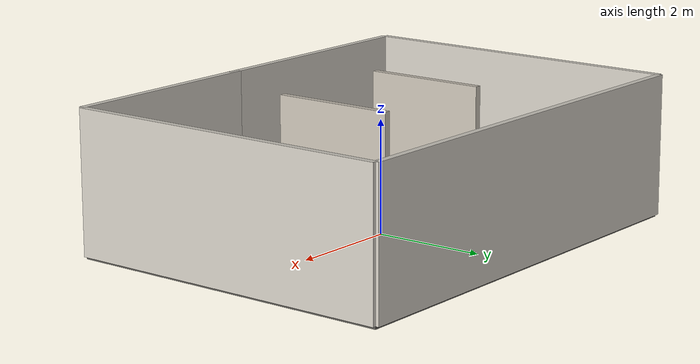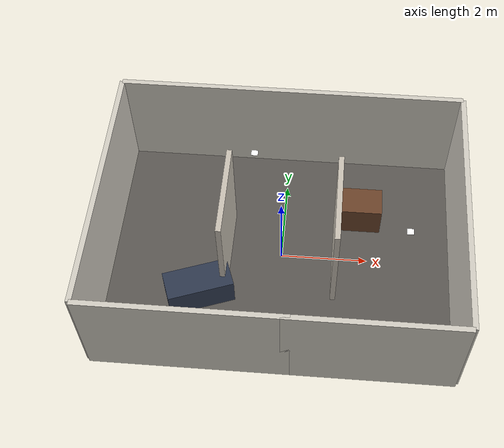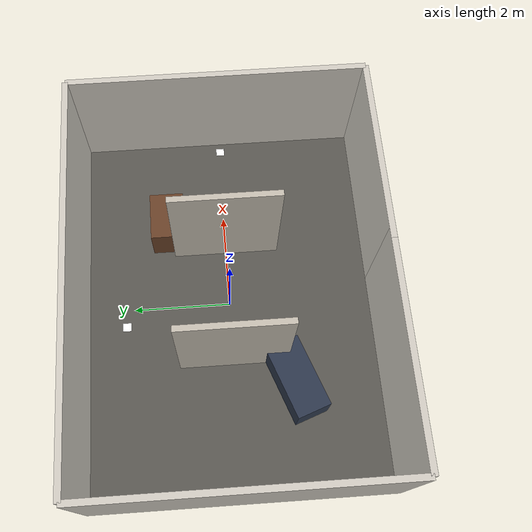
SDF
<?xml version="1.0" ?>
<sdf version="1.9">
  <world name="house_apriltag">
    <physics name="default_physics" type="ignored"/>

    <light name="sun" type="directional">
      <pose>0 0 10 0 0 0</pose>
      <cast_shadows>true</cast_shadows>
      <diffuse>0.9 0.9 0.9 1</diffuse>
      <specular>0.2 0.2 0.2 1</specular>
      <direction>-0.3 0.2 -1</direction>
    </light>

    <model name="house_shell">
      <static>true</static>
      <pose>0 0 0 0 0 0</pose>

      <link name="floor">
        <pose>0 0 -0.025 0 0 0</pose>
        <collision name="collision">
          <geometry>
            <box>
              <size>8 6 0.05</size>
            </box>
          </geometry>
        </collision>
        <visual name="visual">
          <geometry>
            <box>
              <size>8 6 0.05</size>
            </box>
          </geometry>
          <material>
            <ambient>0.35 0.34 0.32 1</ambient>
            <diffuse>0.35 0.34 0.32 1</diffuse>
            <specular>0.02 0.02 0.02 1</specular>
          </material>
        </visual>
      </link>

      <link name="wall_north">
        <pose>0 3 1.25 0 0 0</pose>
        <collision name="collision">
          <geometry>
            <box>
              <size>8 0.12 2.5</size>
            </box>
          </geometry>
        </collision>
        <visual name="visual">
          <geometry>
            <box>
              <size>8 0.12 2.5</size>
            </box>
          </geometry>
          <material>
            <ambient>0.82 0.8 0.76 1</ambient>
            <diffuse>0.82 0.8 0.76 1</diffuse>
            <specular>0.05 0.05 0.05 1</specular>
          </material>
        </visual>
      </link>

      <link name="wall_south_left">
        <pose>-1.8 -3 1.25 0 0 0</pose>
        <collision name="collision">
          <geometry>
            <box>
              <size>4.4 0.12 2.5</size>
            </box>
          </geometry>
        </collision>
        <visual name="visual">
          <geometry>
            <box>
              <size>4.4 0.12 2.5</size>
            </box>
          </geometry>
          <material>
            <ambient>0.82 0.8 0.76 1</ambient>
            <diffuse>0.82 0.8 0.76 1</diffuse>
            <specular>0.05 0.05 0.05 1</specular>
          </material>
        </visual>
      </link>

      <link name="wall_south_right">
        <pose>2.1 -3 1.25 0 0 0</pose>
        <collision name="collision">
          <geometry>
            <box>
              <size>3.8 0.12 2.5</size>
            </box>
          </geometry>
        </collision>
        <visual name="visual">
          <geometry>
            <box>
              <size>3.8 0.12 2.5</size>
            </box>
          </geometry>
          <material>
            <ambient>0.82 0.8 0.76 1</ambient>
            <diffuse>0.82 0.8 0.76 1</diffuse>
            <specular>0.05 0.05 0.05 1</specular>
          </material>
        </visual>
      </link>

      <link name="wall_east">
        <pose>4 0 1.25 0 0 0</pose>
        <collision name="collision">
          <geometry>
            <box>
              <size>0.12 6 2.5</size>
            </box>
          </geometry>
        </collision>
        <visual name="visual">
          <geometry>
            <box>
              <size>0.12 6 2.5</size>
            </box>
          </geometry>
          <material>
            <ambient>0.82 0.8 0.76 1</ambient>
            <diffuse>0.82 0.8 0.76 1</diffuse>
            <specular>0.05 0.05 0.05 1</specular>
          </material>
        </visual>
      </link>

      <link name="wall_west">
        <pose>-4 0 1.25 0 0 0</pose>
        <collision name="collision">
          <geometry>
            <box>
              <size>0.12 6 2.5</size>
            </box>
          </geometry>
        </collision>
        <visual name="visual">
          <geometry>
            <box>
              <size>0.12 6 2.5</size>
            </box>
          </geometry>
          <material>
            <ambient>0.82 0.8 0.76 1</ambient>
            <diffuse>0.82 0.8 0.76 1</diffuse>
            <specular>0.05 0.05 0.05 1</specular>
          </material>
        </visual>
      </link>

      <link name="divider_left">
        <pose>-1.25 0 1.25 0 0 0</pose>
        <collision name="collision">
          <geometry>
            <box>
              <size>0.12 2.2 2.5</size>
            </box>
          </geometry>
        </collision>
        <visual name="visual">
          <geometry>
            <box>
              <size>0.12 2.2 2.5</size>
            </box>
          </geometry>
          <material>
            <ambient>0.78 0.75 0.7 1</ambient>
            <diffuse>0.78 0.75 0.7 1</diffuse>
          </material>
        </visual>
      </link>

      <link name="divider_right">
        <pose>1.25 0 1.25 0 0 0</pose>
        <collision name="collision">
          <geometry>
            <box>
              <size>0.12 2.2 2.5</size>
            </box>
          </geometry>
        </collision>
        <visual name="visual">
          <geometry>
            <box>
              <size>0.12 2.2 2.5</size>
            </box>
          </geometry>
          <material>
            <ambient>0.78 0.75 0.7 1</ambient>
            <diffuse>0.78 0.75 0.7 1</diffuse>
          </material>
        </visual>
      </link>

      <link name="table">
        <pose>1.8 1.2 0.39 0 0 0</pose>
        <collision name="collision">
          <geometry>
            <box>
              <size>1.0 0.7 0.78</size>
            </box>
          </geometry>
        </collision>
        <visual name="visual">
          <geometry>
            <box>
              <size>1.0 0.7 0.78</size>
            </box>
          </geometry>
          <material>
            <ambient>0.42 0.26 0.16 1</ambient>
            <diffuse>0.42 0.26 0.16 1</diffuse>
            <specular>0.05 0.05 0.05 1</specular>
          </material>
        </visual>
      </link>

      <link name="sofa">
        <pose>-1.8 -1.2 0.35 0 0 0.35</pose>
        <collision name="collision">
          <geometry>
            <box>
              <size>1.5 0.7 0.7</size>
            </box>
          </geometry>
        </collision>
        <visual name="visual">
          <geometry>
            <box>
              <size>1.5 0.7 0.7</size>
            </box>
          </geometry>
          <material>
            <ambient>0.18 0.22 0.3 1</ambient>
            <diffuse>0.18 0.22 0.3 1</diffuse>
            <specular>0.03 0.03 0.03 1</specular>
          </material>
        </visual>
      </link>
    </model>

    <include>
      <uri>model://apriltag_36h11_00000</uri>
      <pose>2.9 0.0 1.35 0 0 1.57079632679</pose>
    </include>

    <include>
      <uri>model://apriltag_36h11_00000</uri>
      <pose>-0.8 2.0 1.35 0 0 0</pose>
    </include>
  </world>
</sdf>

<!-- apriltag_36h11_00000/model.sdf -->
<sdf version="1.9">
  <model name="apriltag_36h11_00000">
    <static>true</static>
    <link name="tag_link">
      <pose>0 0 0 0 0 0</pose>
      <collision name="collision">
        <geometry>
          <box>
            <size>0.16 0.16 0.002</size>
          </box>
        </geometry>
      </collision>
      <visual name="visual">
        <geometry>
          <box>
            <size>0.16 0.16 0.002</size>
          </box>
        </geometry>
        <material>
          <ambient>1 1 1 1</ambient>
          <diffuse>1 1 1 1</diffuse>
          <specular>0 0 0 1</specular>
          <pbr>
            <metal>
              <albedo_map>materials/textures/tag36_11_00000.png</albedo_map>
              <roughness>1.0</roughness>
            </metal>
          </pbr>
        </material>
      </visual>
    </link>
  </model>
</sdf>
